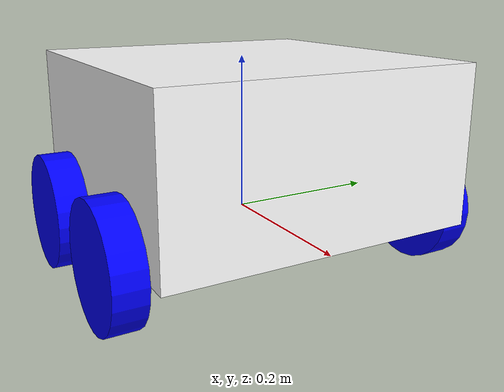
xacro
<?xml version="1.0"?>
<robot xmlns:xacro="http://www.ros.org/wiki/xacro" name="my_bot">

  <!-- Include the inertial macros -->
  <xacro:include filename="inertial_macros.xacro"/>

  <!-- Materials -->
  <material name="white">
    <color rgba="1 1 1 1"/>
  </material>
  <material name="black">
    <color rgba="0 0 0 1"/>
  </material>
  <material name="blue">
    <color rgba="0 0 1 1"/>
  </material>
  <material name="red">
    <color rgba="1 0 0 1"/>
  </material>

  <!-- =================== BASE LINK =================== -->
  <link name="base_link"/>

  <!-- =================== CHASSIS =================== -->
  <joint name="chassis_joint" type="fixed">
    <parent link="base_link"/>
    <child link="chassis"/>
    <origin xyz="-0.2 0 0.0" rpy="0 0 0"/>
  </joint>

  <link name= "chassis">
    <visual>
      <origin xyz="0.2 0.0 0.1" rpy="0.0 0.0 0.0"/>
      <geometry>
        <box size = "0.4 0.4 0.2"/>
      </geometry>
      <material name = "white"/>
    </visual>
    <collision>
      <origin xyz="0.2 0.0 0.1" rpy="0.0 0.0 0.0"/>
      <geometry>
        <box size = "0.4 0.4 0.2"/>
      </geometry>
    </collision>
    <xacro:box_inertia mass="0.5" x="0.4" y="0.4" z="0.2">
      <origin xyz="0.2 0.0 0.1" rpy="0 0 0"/>
    </xacro:box_inertia>
  </link>

  <gazebo reference="chassis">
      <material>Gazebo/White</material>
  </gazebo>

  <!--LEFT FRONT WHEEL JOINT-->
  <joint name="left_front_joint" type="continuous">
    <parent link= "base_link"/>
    <child link = "left_front"/>
    <origin xyz="0.1 0.22 0.0" rpy="-${pi/2} 0 0"/>
    <axis xyz = "0 0 1"/>
  </joint>

  <!--LEFT FRONT WHEEL LINK-->
  <link name = "left_front" >
    <visual>
      <geometry>
        <cylinder radius="0.075" length="0.04"/>
      </geometry>
      <material name = "blue"/>
    </visual>
    <collision>
      <geometry>
        <cylinder radius="0.075" length="0.04"/>
      </geometry>
    </collision>
    <xacro:cylinder_inertia mass="0.1" length="0.04" radius="0.075">
      <origin xyz="0.0 0.0 0.0" rpy="0.0 0.0 0.0"/>
    </xacro:cylinder_inertia>

  </link>
  <gazebo reference="left_front">
      <material>Gazebo/Blue</material>
  </gazebo>

  <!--RIGHT FRONT WHEEL JOINT-->
  <joint name="right_front_joint" type="continuous">
    <parent link= "base_link"/>
    <child link = "right_front"/>
    <origin xyz="0.1 -0.22 0.0" rpy="${pi/2} 0 0"/>
    <axis xyz = "0 0 -1"/>
  </joint>

  <!--RIGHT FRONT WHEEL LINK-->
  <link name = "right_front" >
    <visual>
      <geometry>
        <cylinder radius="0.075" length="0.04"/>
      </geometry>
      <material name = "blue"/>
    </visual>
    <collision>
      <geometry>
        <cylinder radius="0.075" length="0.04"/>
      </geometry>
    </collision>
    <xacro:cylinder_inertia mass="0.1" length="0.04" radius="0.075">
      <origin xyz="0.0 0.0 0.0" rpy="0.0 0.0 0.0"/>
    </xacro:cylinder_inertia>

  </link>
  <gazebo reference="right_front">
      <material>Gazebo/Blue</material>
  </gazebo>
  <!--LEFT REAR WHEEL JOINT-->
  <joint name="left_rear_joint" type="continuous">
    <parent link= "base_link"/>
    <child link = "left_rear"/>
    <origin xyz="-0.1 0.22 0.0" rpy="-${pi/2} 0 0"/>
    <axis xyz = "0 0 1"/>
  </joint>

  <!--LEFT REAR WHEEL LINK-->
  <link name = "left_rear" >
    <visual>
      <geometry>
        <cylinder radius="0.075" length="0.04"/>
      </geometry>
      <material name = "blue"/>
    </visual>
    <collision>
      <geometry>
        <cylinder radius="0.075" length="0.04"/>
      </geometry>
    </collision>
    <xacro:cylinder_inertia mass="0.1" length="0.04" radius="0.075">
      <origin xyz="0.0 0.0 0.0" rpy="0.0 0.0 0.0"/>
    </xacro:cylinder_inertia>

  </link>
  <gazebo reference="left_rear">
      <material>Gazebo/Blue</material>
  </gazebo>
  <!--RIGHT REAR WHEEL JOINT-->
  <joint name="right_rear_joint" type="continuous">
    <parent link= "base_link"/>
    <child link = "right_rear"/>
    <origin xyz="-0.1 -0.22 0.0" rpy="${pi/2} 0 0"/>
    <axis xyz = "0 0 -1"/>
  </joint>

  <!--RIGHT REAR WHEEL LINK-->
  <link name = "right_rear" >
    <visual>
      <geometry>
        <cylinder radius="0.075" length="0.04"/>
      </geometry>
      <material name = "blue"/>
    </visual>
    <collision>
      <geometry>
        <cylinder radius="0.075" length="0.04"/>
      </geometry>
    </collision>
    <xacro:cylinder_inertia mass="0.1" length="0.04" radius="0.075">
      <origin xyz="0.0 0.0 0.0" rpy="0.0 0.0 0.0"/>
    </xacro:cylinder_inertia>

  </link>
  <gazebo reference="right_rear">
      <material>Gazebo/Blue</material>
  </gazebo>

</robot>

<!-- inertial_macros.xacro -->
<robot xmlns:xacro="http://www.ros.org/wiki/xacro">

  <!-- Box inertia macro -->
  <xacro:macro name="box_inertia" params="mass x y z *origin">
    <inertial>
      <xacro:insert_block name="origin"/>
      <mass value="${mass}"/>
      <inertia ixx="${(1/12.0)*mass*(y*y + z*z)}"
               iyy="${(1/12.0)*mass*(x*x + z*z)}"
               izz="${(1/12.0)*mass*(x*x + y*y)}"
               ixy="0" ixz="0" iyz="0"/>
    </inertial>
  </xacro:macro>

  <!-- Cylinder inertia macro -->
  <xacro:macro name="cylinder_inertia" params="mass length radius *origin">
    <inertial>
      <xacro:insert_block name="origin"/>
      <mass value="${mass}"/>
      <inertia ixx="${(1/12.0)*mass*(3*radius*radius + length*length)}"
               iyy="${(1/12.0)*mass*(3*radius*radius + length*length)}"
               izz="${0.5*mass*radius*radius}"
               ixy="0" ixz="0" iyz="0"/>
    </inertial>
  </xacro:macro>

  <!-- Sphere inertia macro -->
  <xacro:macro name="sphere_inertia" params="mass radius *origin">
    <inertial>
      <xacro:insert_block name="origin"/>
      <mass value="${mass}"/>
      <inertia ixx="${0.4*mass*radius*radius}"
               iyy="${0.4*mass*radius*radius}"
               izz="${0.4*mass*radius*radius}"
               ixy="0" ixz="0" iyz="0"/>
    </inertial>
  </xacro:macro>

</robot>
